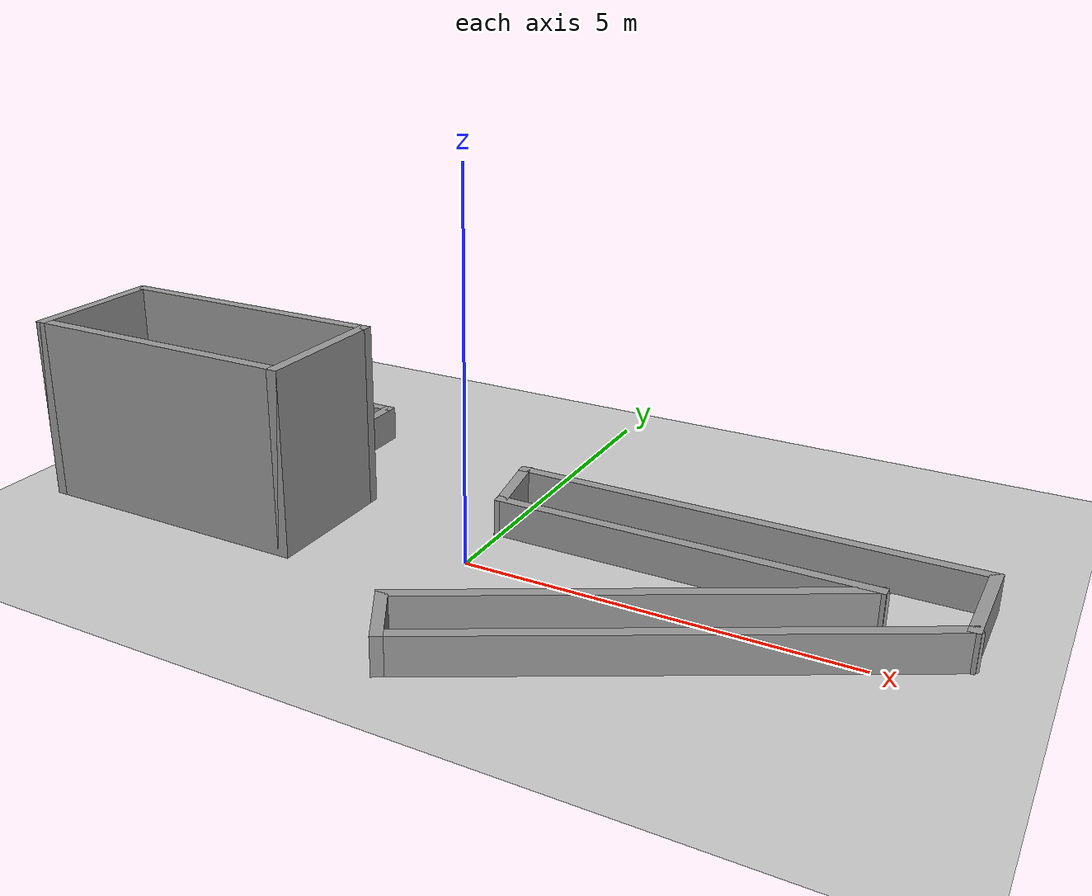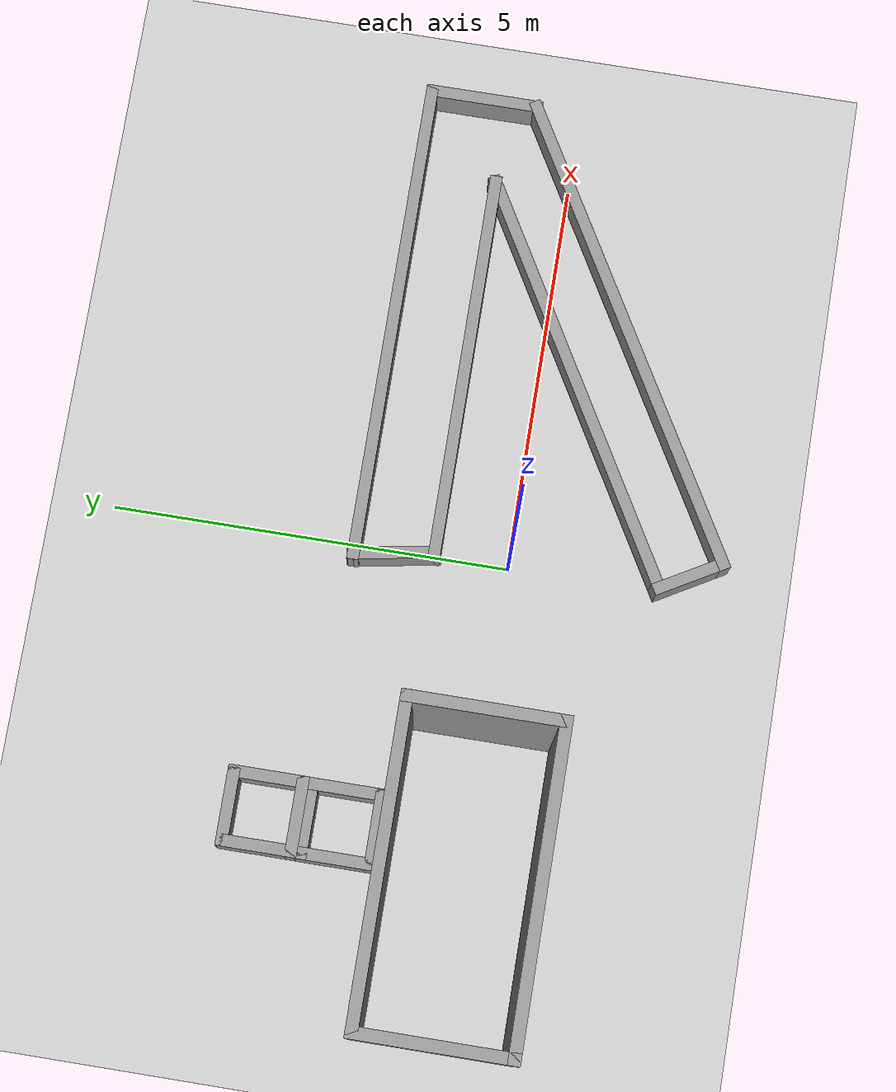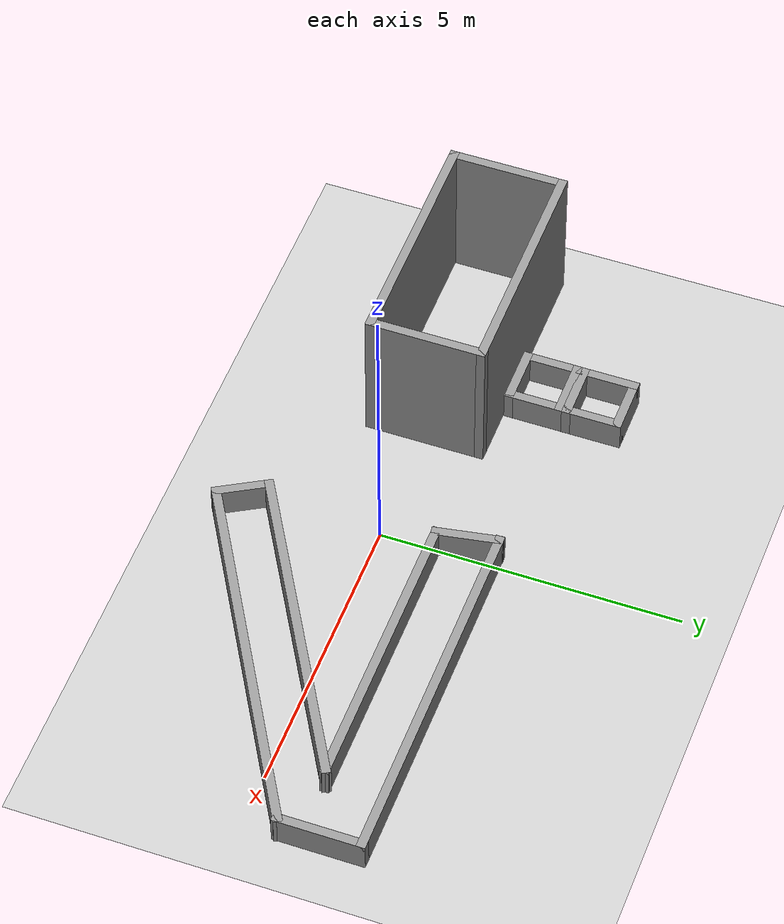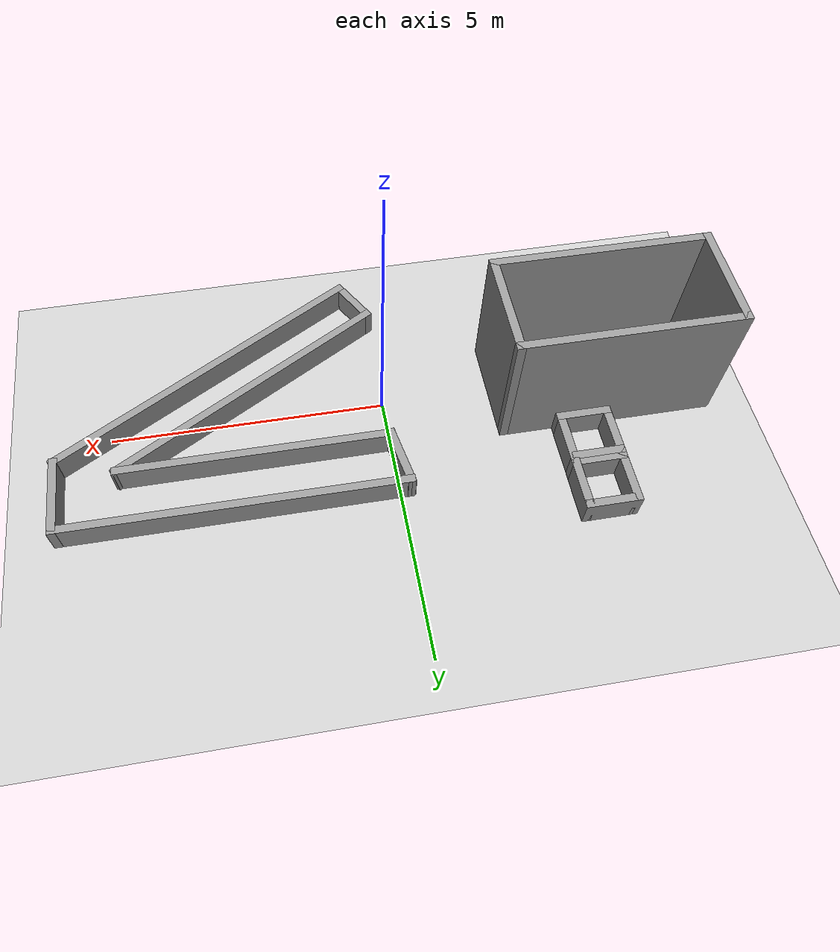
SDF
<sdf version="1.6">
 <world name="default">
  <light name="sun" type="directional">
   <pose>0 0 10 0 -0 0</pose>
   <diffuse>0.8 0.8 0.8 1</diffuse>
   <specular>0.1 0.1 0.1 1</specular>
   <attenuation>
    <range>1000</range>
    <constant>0.9</constant>
    <linear>0.01</linear>
    <quadratic>0.001</quadratic>
   </attenuation>
   <direction>-0.5 0.5 -1</direction>
  </light>
  <model name="ground_plane">
   <static>1</static>
   <link name="link">
    <collision name="collision">
     <geometry><plane><normal>0 0 1</normal><size>100 100</size></plane></geometry>
     <surface><friction><ode><mu>100</mu><mu2>50</mu2></ode></friction></surface>
    </collision>
    <visual name="visual">
     <cast_shadows>0</cast_shadows>
     <geometry><plane><normal>0 0 1</normal><size>100 100</size></plane></geometry>
     <material>
      <script><uri>file://media/materials/scripts/gazebo.material</uri><name>Gazebo/Grey</name></script>
     </material>
    </visual>
   </link>
  </model>
  <gravity>0 0 -9.8</gravity>
  <magnetic_field>6e-06 2.3e-05 -4.2e-05</magnetic_field>
  <atmosphere type="adiabatic"/>
  <physics name="default_physics" default="0" type="ode">
   <max_step_size>0.001</max_step_size>
   <real_time_factor>1</real_time_factor>
   <real_time_update_rate>1000</real_time_update_rate>
  </physics>
  <scene><ambient>0.4 0.4 0.4 1</ambient><background>0.7 0.7 0.7 1</background><shadows>1</shadows></scene>
  <spherical_coordinates>
   <surface_model>EARTH_WGS84</surface_model>
   <latitude_deg>0</latitude_deg>
   <longitude_deg>0</longitude_deg>
   <elevation>0</elevation>
   <heading_deg>0</heading_deg>
  </spherical_coordinates>
  <model name="Map3">
   <pose>-4.01596 0.005491 0 0 -0 0</pose>
   <link name="Wall_0">
    <collision name="Wall_0_Collision">
     <geometry><box><size>2 0.15 2.5</size></box></geometry>
     <pose>0 0 1.25 0 -0 0</pose>
    </collision>
    <visual name="Wall_0_Visual">
     <pose>0 0 1.25 0 -0 0</pose>
     <geometry><box><size>2 0.15 2.5</size></box></geometry>
     <material>
      <script><uri>file://media/materials/scripts/gazebo.material</uri><name>Gazebo/Grey</name></script>
      <ambient>1 1 1 1</ambient>
     </material>
    </visual>
    <pose>-1.925 0 0 0 0 -1.5708</pose>
   </link>
   <link name="Wall_1">
    <collision name="Wall_1_Collision">
     <geometry><box><size>4 0.15 2.5</size></box></geometry>
     <pose>0 0 1.25 0 -0 0</pose>
    </collision>
    <visual name="Wall_1_Visual">
     <pose>0 0 1.25 0 -0 0</pose>
     <geometry><box><size>4 0.15 2.5</size></box></geometry>
     <material>
      <script><uri>file://media/materials/scripts/gazebo.material</uri><name>Gazebo/Grey</name></script>
      <ambient>1 1 1 1</ambient>
     </material>
    </visual>
    <pose>0 -0.925 0 0 -0 0</pose>
   </link>
   <link name="Wall_2">
    <collision name="Wall_2_Collision">
     <geometry><box><size>2 0.15 2.5</size></box></geometry>
     <pose>0 0 1.25 0 -0 0</pose>
    </collision>
    <visual name="Wall_2_Visual">
     <pose>0 0 1.25 0 -0 0</pose>
     <geometry><box><size>2 0.15 2.5</size></box></geometry>
     <material>
      <script><uri>file://media/materials/scripts/gazebo.material</uri><name>Gazebo/Grey</name></script>
      <ambient>1 1 1 1</ambient>
     </material>
    </visual>
    <pose>1.925 0 0 0 -0 1.5708</pose>
   </link>
   <link name="Wall_3">
    <collision name="Wall_3_Collision">
     <geometry><box><size>4 0.15 2.5</size></box></geometry>
     <pose>0 0 1.25 0 -0 0</pose>
    </collision>
    <visual name="Wall_3_Visual">
     <pose>0 0 1.25 0 -0 0</pose>
     <geometry><box><size>4 0.15 2.5</size></box></geometry>
     <material>
      <script><uri>file://media/materials/scripts/gazebo.material</uri><name>Gazebo/Grey</name></script>
      <ambient>1 1 1 1</ambient>
     </material>
    </visual>
    <pose>0 0.925 0 0 -0 3.14159</pose>
   </link>
   <static>1</static>
  </model>
  <model name="concavObs1">
   <pose>2.8791 -0.348226 0 0 -0 0</pose>
   <link name="Wall_10">
    <collision name="Wall_10_Collision">
     <geometry><box><size>6.5 0.15 0.5</size></box></geometry>
     <pose>0 0 0.25 0 -0 0</pose>
    </collision>
    <visual name="Wall_10_Visual">
     <pose>0 0 0.25 0 -0 0</pose>
     <geometry><box><size>6.5 0.15 0.5</size></box></geometry>
     <material>
      <script><uri>file://media/materials/scripts/gazebo.material</uri><name>Gazebo/Grey</name></script>
      <ambient>1 1 1 1</ambient>
     </material>
    </visual>
    <pose>0.292706 -0.667184 0 0 -0 0.523619</pose>
   </link>
   <link name="Wall_11">
    <collision name="Wall_11_Collision">
     <geometry><box><size>1.5 0.15 0.5</size></box></geometry>
     <pose>0 0 0.25 0 -0 0</pose>
    </collision>
    <visual name="Wall_11_Visual">
     <pose>0 0 0.25 0 -0 0</pose>
     <geometry><box><size>1.5 0.15 0.5</size></box></geometry>
     <material>
      <script><uri>file://media/materials/scripts/gazebo.material</uri><name>Gazebo/Grey</name></script>
      <ambient>1 1 1 1</ambient>
     </material>
    </visual>
    <pose>3.04221 1.59532 0 0 -0 1.5708</pose>
   </link>
   <link name="Wall_12">
    <collision name="Wall_12_Collision">
     <geometry><box><size>6.25 0.15 0.5</size></box></geometry>
     <pose>0 0 0.25 0 -0 0</pose>
    </collision>
    <visual name="Wall_12_Visual">
     <pose>0 0 0.25 0 -0 0</pose>
     <geometry><box><size>6.25 0.15 0.5</size></box></geometry>
     <material>
      <script><uri>file://media/materials/scripts/gazebo.material</uri><name>Gazebo/Grey</name></script>
      <ambient>1 1 1 1</ambient>
     </material>
    </visual>
    <pose>-0.007794 2.27032 0 0 -0 3.14159</pose>
   </link>
   <link name="Wall_13">
    <collision name="Wall_13_Collision">
     <geometry><box><size>1.15433 0.15 0.5</size></box></geometry>
     <pose>0 0 0.25 0 -0 0</pose>
    </collision>
    <visual name="Wall_13_Visual">
     <pose>0 0 0.25 0 -0 0</pose>
     <geometry><box><size>1.15433 0.15 0.5</size></box></geometry>
     <material>
      <script><uri>file://media/materials/scripts/gazebo.material</uri><name>Gazebo/Grey</name></script>
      <ambient>1 1 1 1</ambient>
     </material>
    </visual>
    <pose>-2.96979 1.77582 0 0 0 -1.39468</pose>
   </link>
   <link name="Wall_7">
    <collision name="Wall_7_Collision">
     <geometry><box><size>5 0.15 0.5</size></box></geometry>
     <pose>0 0 0.25 0 -0 0</pose>
    </collision>
    <visual name="Wall_7_Visual">
     <pose>0 0 0.25 0 -0 0</pose>
     <geometry><box><size>5 0.15 0.5</size></box></geometry>
     <material>
      <script><uri>file://media/materials/scripts/gazebo.material</uri><name>Gazebo/Grey</name></script>
      <ambient>1 1 1 1</ambient>
     </material>
    </visual>
    <pose>-0.456794 1.28132 0 0 -0 0</pose>
   </link>
   <link name="Wall_8">
    <collision name="Wall_8_Collision">
     <geometry><box><size>5.75 0.15 0.5</size></box></geometry>
     <pose>0 0 0.25 0 -0 0</pose>
    </collision>
    <visual name="Wall_8_Visual">
     <pose>0 0 0.25 0 -0 0</pose>
     <geometry><box><size>5.75 0.15 0.5</size></box></geometry>
     <material>
      <script><uri>file://media/materials/scripts/gazebo.material</uri><name>Gazebo/Grey</name></script>
      <ambient>1 1 1 1</ambient>
     </material>
    </visual>
    <pose>-0.456794 -0.118683 0 0 0 -2.61802</pose>
   </link>
   <link name="Wall_9">
    <collision name="Wall_9_Collision">
     <geometry><box><size>1 0.15 0.5</size></box></geometry>
     <pose>0 0 0.25 0 -0 0</pose>
    </collision>
    <visual name="Wall_9_Visual">
     <pose>0 0 0.25 0 -0 0</pose>
     <geometry><box><size>1 0.15 0.5</size></box></geometry>
     <material>
      <script><uri>file://media/materials/scripts/gazebo.material</uri><name>Gazebo/Grey</name></script>
      <ambient>1 1 1 1</ambient>
     </material>
    </visual>
    <pose>-2.66929 -1.88668 0 0 0 -1.04713</pose>
   </link>
   <static>1</static>
  </model>
  <model name="obs_1x1_0">
   <pose>-3.49797 1.51219 0 0 -0 0</pose>
   <link name="Wall_0">
    <collision name="Wall_0_Collision">
     <geometry><box><size>1 0.15 0.5</size></box></geometry>
     <pose>0 0 0.25 0 -0 0</pose>
    </collision>
    <visual name="Wall_0_Visual">
     <pose>0 0 0.25 0 -0 0</pose>
     <geometry><box><size>1 0.15 0.5</size></box></geometry>
     <material>
      <script><uri>file://media/materials/scripts/gazebo.material</uri><name>Gazebo/Grey</name></script>
      <ambient>1 1 1 1</ambient>
     </material>
    </visual>
    <pose>0 0.425 0 0 -0 0</pose>
   </link>
   <link name="Wall_1">
    <collision name="Wall_1_Collision">
     <geometry><box><size>1 0.15 0.5</size></box></geometry>
     <pose>0 0 0.25 0 -0 0</pose>
    </collision>
    <visual name="Wall_1_Visual">
     <pose>0 0 0.25 0 -0 0</pose>
     <geometry><box><size>1 0.15 0.5</size></box></geometry>
     <material>
      <script><uri>file://media/materials/scripts/gazebo.material</uri><name>Gazebo/Grey</name></script>
      <ambient>1 1 1 1</ambient>
     </material>
    </visual>
    <pose>0.425 0 0 0 0 -1.5708</pose>
   </link>
   <link name="Wall_2">
    <collision name="Wall_2_Collision">
     <geometry><box><size>1 0.15 0.5</size></box></geometry>
     <pose>0 0 0.25 0 -0 0</pose>
    </collision>
    <visual name="Wall_2_Visual">
     <pose>0 0 0.25 0 -0 0</pose>
     <geometry><box><size>1 0.15 0.5</size></box></geometry>
     <material>
      <script><uri>file://media/materials/scripts/gazebo.material</uri><name>Gazebo/Grey</name></script>
      <ambient>1 1 1 1</ambient>
     </material>
    </visual>
    <pose>0 -0.425 0 0 -0 3.14159</pose>
   </link>
   <link name="Wall_3">
    <collision name="Wall_3_Collision">
     <geometry><box><size>1 0.15 0.5</size></box></geometry>
     <pose>0 0 0.25 0 -0 0</pose>
    </collision>
    <visual name="Wall_3_Visual">
     <pose>0 0 0.25 0 -0 0</pose>
     <geometry><box><size>1 0.15 0.5</size></box></geometry>
     <material>
      <script><uri>file://media/materials/scripts/gazebo.material</uri><name>Gazebo/Grey</name></script>
      <ambient>1 1 1 1</ambient>
     </material>
    </visual>
    <pose>-0.425 0 0 0 -0 1.5708</pose>
   </link>
   <static>1</static>
  </model>
  <model name="obs_1x1_0_clone">
   <pose>-3.49558 2.48388 0 0 -0 0</pose>
   <link name="Wall_0">
    <collision name="Wall_0_Collision">
     <geometry><box><size>1 0.15 0.5</size></box></geometry>
     <pose>0 0 0.25 0 -0 0</pose>
    </collision>
    <visual name="Wall_0_Visual">
     <pose>0 0 0.25 0 -0 0</pose>
     <geometry><box><size>1 0.15 0.5</size></box></geometry>
     <material>
      <script><uri>file://media/materials/scripts/gazebo.material</uri><name>Gazebo/Grey</name></script>
      <ambient>1 1 1 1</ambient>
     </material>
    </visual>
    <pose>0 0.425 0 0 -0 0</pose>
   </link>
   <link name="Wall_1">
    <collision name="Wall_1_Collision">
     <geometry><box><size>1 0.15 0.5</size></box></geometry>
     <pose>0 0 0.25 0 -0 0</pose>
    </collision>
    <visual name="Wall_1_Visual">
     <pose>0 0 0.25 0 -0 0</pose>
     <geometry><box><size>1 0.15 0.5</size></box></geometry>
     <material>
      <script><uri>file://media/materials/scripts/gazebo.material</uri><name>Gazebo/Grey</name></script>
      <ambient>1 1 1 1</ambient>
     </material>
    </visual>
    <pose>0.425 0 0 0 0 -1.5708</pose>
   </link>
   <link name="Wall_2">
    <collision name="Wall_2_Collision">
     <geometry><box><size>1 0.15 0.5</size></box></geometry>
     <pose>0 0 0.25 0 -0 0</pose>
    </collision>
    <visual name="Wall_2_Visual">
     <pose>0 0 0.25 0 -0 0</pose>
     <geometry><box><size>1 0.15 0.5</size></box></geometry>
     <material>
      <script><uri>file://media/materials/scripts/gazebo.material</uri><name>Gazebo/Grey</name></script>
      <ambient>1 1 1 1</ambient>
     </material>
    </visual>
    <pose>0 -0.425 0 0 -0 3.14159</pose>
   </link>
   <link name="Wall_3">
    <collision name="Wall_3_Collision">
     <geometry><box><size>1 0.15 0.5</size></box></geometry>
     <pose>0 0 0.25 0 -0 0</pose>
    </collision>
    <visual name="Wall_3_Visual">
     <pose>0 0 0.25 0 -0 0</pose>
     <geometry><box><size>1 0.15 0.5</size></box></geometry>
     <material>
      <script><uri>file://media/materials/scripts/gazebo.material</uri><name>Gazebo/Grey</name></script>
      <ambient>1 1 1 1</ambient>
     </material>
    </visual>
    <pose>-0.425 0 0 0 -0 1.5708</pose>
   </link>
   <static>1</static>
  </model>
 </world>
</sdf>
